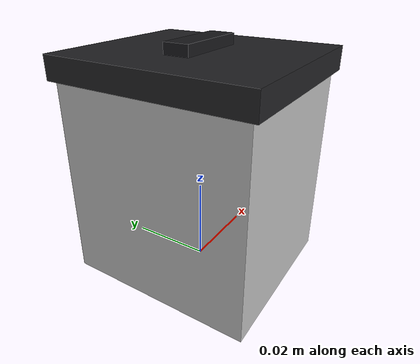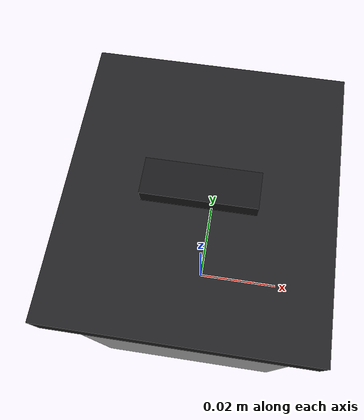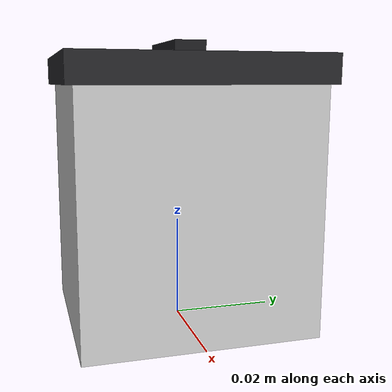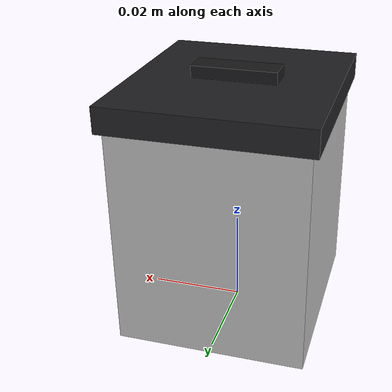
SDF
<?xml version="1.0"?>
<sdf version="1.7">
  <model name="bin_green">
    <static>true</static>
    <link name="link">
<visual name="body"><pose>0 0 0.0237 0 0 0</pose><geometry><box><size>0.0400 0.0450 0.0473</size></box></geometry><material><script><uri>model://bin_green/materials/scripts</uri><uri>model://bin_green/materials/textures</uri><name>Side</name></script></material></visual>
      <collision name="body_c_c"><pose>0 0 0.0237 0 0 0</pose><geometry><box><size>0.0400 0.0450 0.0473</size></box></geometry></collision>
      <visual name="lid"><pose>0 0 0.0501 0 0 0</pose><geometry><box><size>0.0424 0.0477 0.0055</size></box></geometry><material><ambient>0.13 0.13 0.14 1</ambient><diffuse>0.13 0.13 0.14 1</diffuse></material></visual>
      <collision name="lid_c_c"><pose>0 0 0.0501 0 0 0</pose><geometry><box><size>0.0424 0.0477 0.0055</size></box></geometry></collision>
      <visual name="handle"><pose>0 0 0.0534 0 0 0</pose><geometry><box><size>0.0180 0.006 0.004</size></box></geometry><material><ambient>0.10 0.10 0.11 1</ambient><diffuse>0.10 0.10 0.11 1</diffuse></material></visual>
    </link>
  </model>
</sdf>
